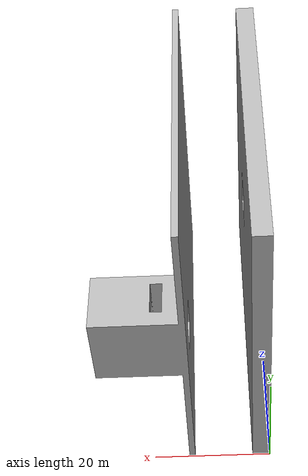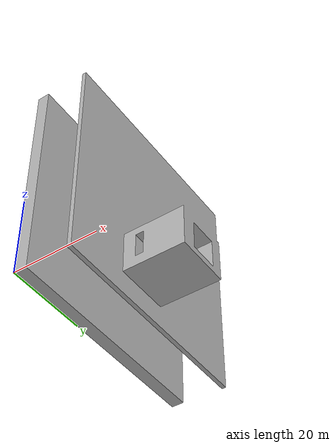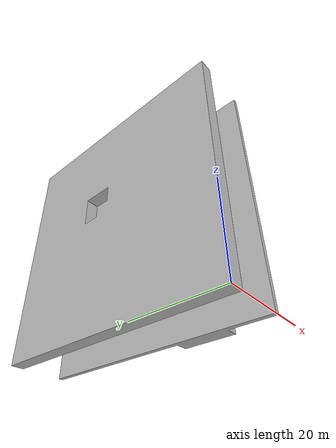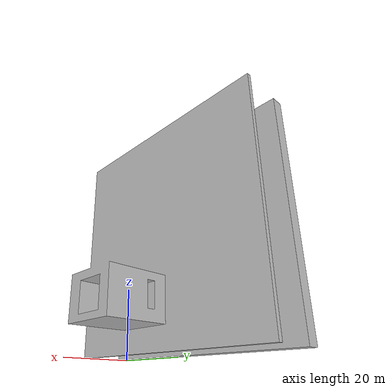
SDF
<?xml version="1.0" ?>
<sdf version="1.5">
  <model name="puzzle">
    <static>true</static>
    <link name="link">
      <pose>0 0 0.01 0 0 0</pose>
      <collision name="wall1">
        <geometry>
          <mesh>
            <uri>model://puzzle/meshes/PUZZLE.stl</uri>
          </mesh>
        </geometry>
      </collision>
      <visual name="visual1">
        <geometry>
          <mesh>
            <uri>model://puzzle/meshes/PUZZLE.stl</uri>
          </mesh>
        </geometry>
      </visual>
    </link>
  </model>
</sdf>
